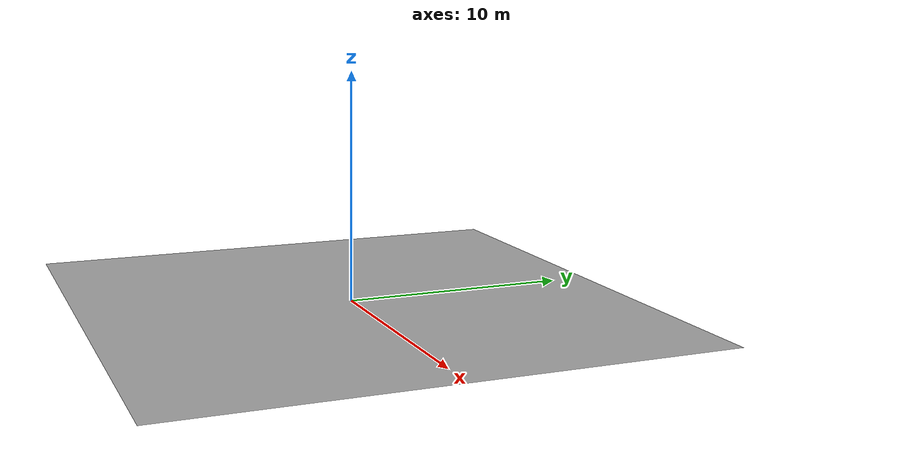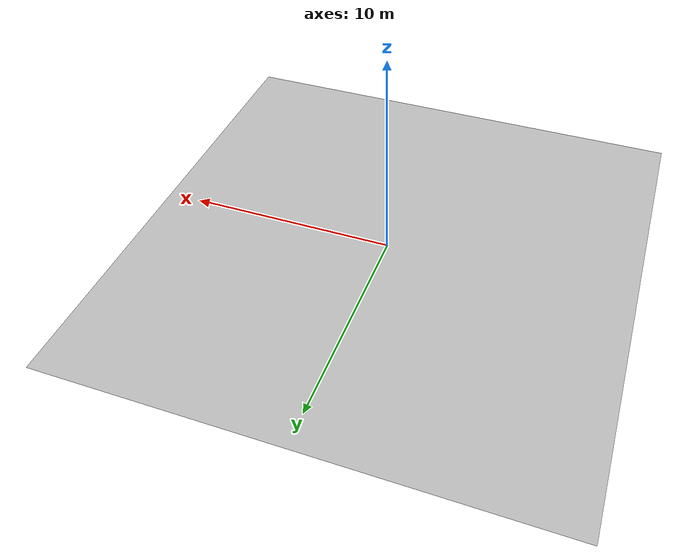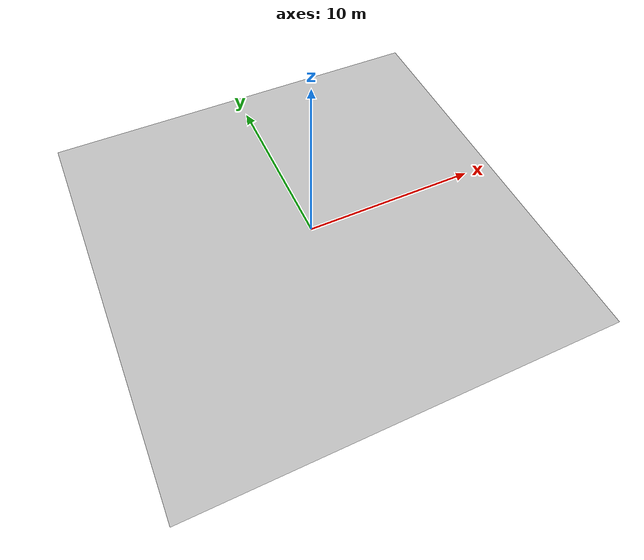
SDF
<?xml version='1.0'?>
<sdf version='1.6'>
  <model name='arena'>
    <link name='link_0'>
      <pose frame=''>0 0 0 0 -0 0</pose>
      <self_collide>0</self_collide>
      <enable_wind>0</enable_wind>
      <kinematic>0</kinematic>
      <gravity>1</gravity>
      <inertial>
        <mass>1</mass>
        <pose frame=''>0 0 0 0 -0 0</pose>
        <inertia>
          <ixx>1</ixx>
          <ixy>0</ixy>
          <ixz>0</ixz>
          <iyy>1</iyy>
          <iyz>0</iyz>
          <izz>1</izz>
        </inertia>
      </inertial>
      <visual name='visual'>
        <pose frame=''>0 0 0 0 -0 0</pose>
        <geometry>
          <mesh>
            <uri>model://arena/meshes/arena.dae</uri>
            <scale>1.85 1.85 1.85</scale>
          </mesh>
        </geometry>
        <transparency>0</transparency>
        <cast_shadows>False</cast_shadows>
      </visual>
      <collision name="collision">
        <geometry>
          <mesh>
            <uri>model://arena/meshes/arena.dae</uri>
            <scale>1.85 1.85 1.85</scale>
          </mesh>
        </geometry>
      </collision>
    </link>
    <static>1</static>
    <allow_auto_disable>1</allow_auto_disable>
  </model>

</sdf>
